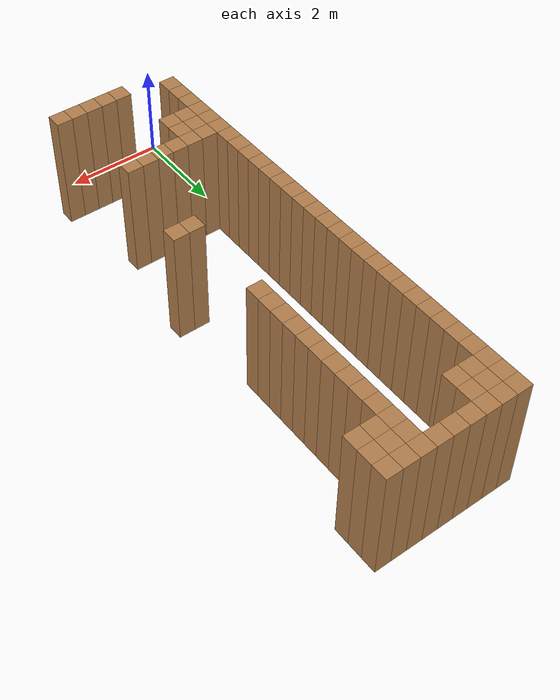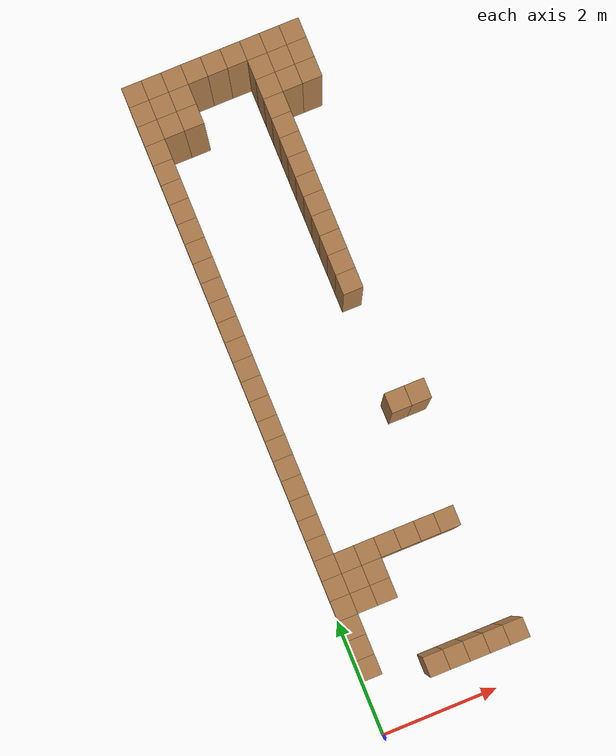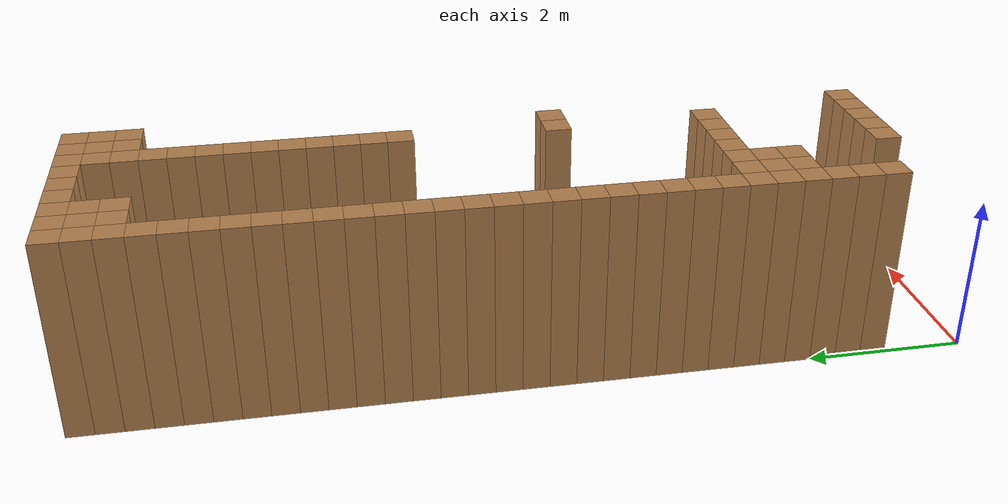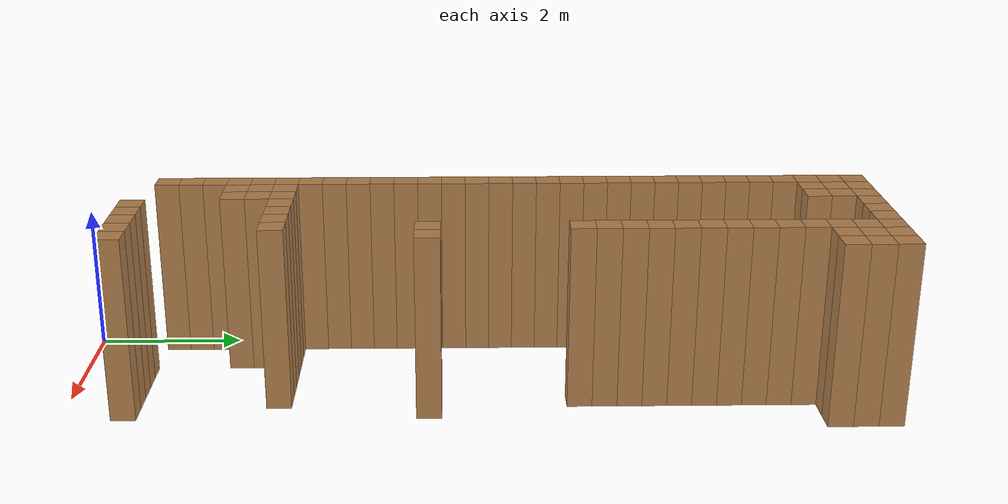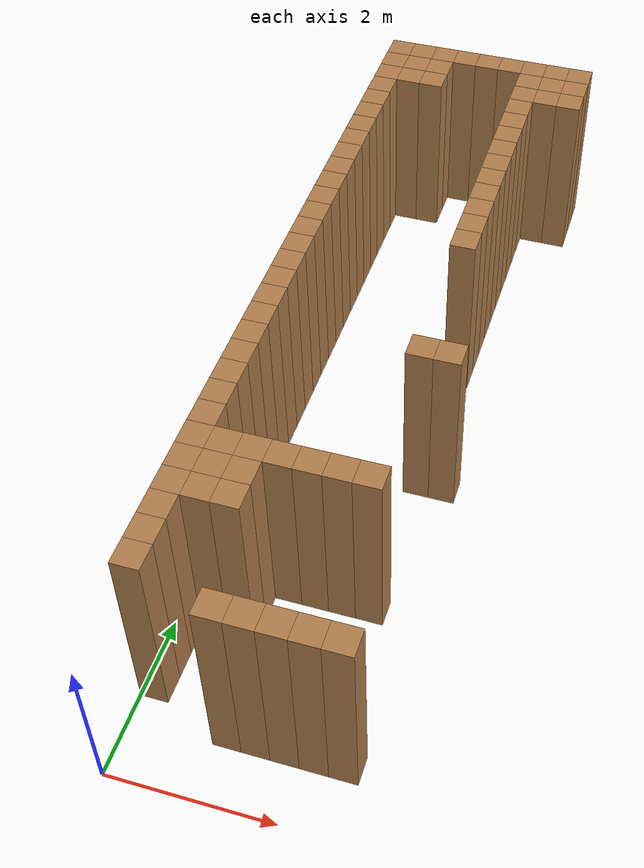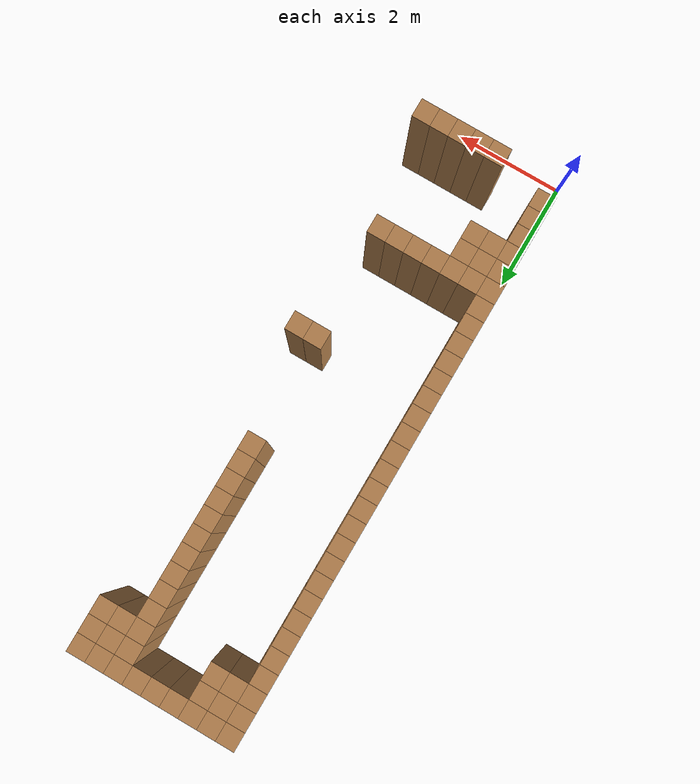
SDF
<sdf version="1.7">
 <model name="maze">
  <static>true</static>
  <link name="Wall_0">
   <collision name="Wall_0_Collision">
    <geometry><box><size>0.3333333333333333 0.3333333333333333 2.5</size></box></geometry>
    <pose>0 0 1.25 0 0 0</pose>
   </collision>
   <visual name="Wall_0_Visual">
    <pose>0 0 1.25 0 0 0</pose>
    <geometry><box><size>0.3333333333333333 0.3333333333333333 2.5</size></box></geometry>
    <material>
     <script><uri>file://media/materials/scripts/gazebo.material</uri><name>Gazebo/Wood</name></script>
     <ambient>1 1 1 1</ambient>
    </material>
    <meta><layer>0</layer></meta>
   </visual>
   <pose>0.16666666666666666 10.833333333333332 0 0 0 0</pose>
  </link>
  <link name="Wall_1">
   <collision name="Wall_1_Collision">
    <geometry><box><size>0.3333333333333333 0.3333333333333333 2.5</size></box></geometry>
    <pose>0 0 1.25 0 0 0</pose>
   </collision>
   <visual name="Wall_1_Visual">
    <pose>0 0 1.25 0 0 0</pose>
    <geometry><box><size>0.3333333333333333 0.3333333333333333 2.5</size></box></geometry>
    <material>
     <script><uri>file://media/materials/scripts/gazebo.material</uri><name>Gazebo/Wood</name></script>
     <ambient>1 1 1 1</ambient>
    </material>
    <meta><layer>0</layer></meta>
   </visual>
   <pose>0.5 10.833333333333332 0 0 0 0</pose>
  </link>
  <link name="Wall_2">
   <collision name="Wall_2_Collision">
    <geometry><box><size>0.3333333333333333 0.3333333333333333 2.5</size></box></geometry>
    <pose>0 0 1.25 0 0 0</pose>
   </collision>
   <visual name="Wall_2_Visual">
    <pose>0 0 1.25 0 0 0</pose>
    <geometry><box><size>0.3333333333333333 0.3333333333333333 2.5</size></box></geometry>
    <material>
     <script><uri>file://media/materials/scripts/gazebo.material</uri><name>Gazebo/Wood</name></script>
     <ambient>1 1 1 1</ambient>
    </material>
    <meta><layer>0</layer></meta>
   </visual>
   <pose>0.8333333333333333 10.833333333333332 0 0 0 0</pose>
  </link>
  <link name="Wall_3">
   <collision name="Wall_3_Collision">
    <geometry><box><size>0.3333333333333333 0.3333333333333333 2.5</size></box></geometry>
    <pose>0 0 1.25 0 0 0</pose>
   </collision>
   <visual name="Wall_3_Visual">
    <pose>0 0 1.25 0 0 0</pose>
    <geometry><box><size>0.3333333333333333 0.3333333333333333 2.5</size></box></geometry>
    <material>
     <script><uri>file://media/materials/scripts/gazebo.material</uri><name>Gazebo/Wood</name></script>
     <ambient>1 1 1 1</ambient>
    </material>
    <meta><layer>0</layer></meta>
   </visual>
   <pose>1.1666666666666667 10.833333333333332 0 0 0 0</pose>
  </link>
  <link name="Wall_4">
   <collision name="Wall_4_Collision">
    <geometry><box><size>0.3333333333333333 0.3333333333333333 2.5</size></box></geometry>
    <pose>0 0 1.25 0 0 0</pose>
   </collision>
   <visual name="Wall_4_Visual">
    <pose>0 0 1.25 0 0 0</pose>
    <geometry><box><size>0.3333333333333333 0.3333333333333333 2.5</size></box></geometry>
    <material>
     <script><uri>file://media/materials/scripts/gazebo.material</uri><name>Gazebo/Wood</name></script>
     <ambient>1 1 1 1</ambient>
    </material>
    <meta><layer>0</layer></meta>
   </visual>
   <pose>1.5 10.833333333333332 0 0 0 0</pose>
  </link>
  <link name="Wall_5">
   <collision name="Wall_5_Collision">
    <geometry><box><size>0.3333333333333333 0.3333333333333333 2.5</size></box></geometry>
    <pose>0 0 1.25 0 0 0</pose>
   </collision>
   <visual name="Wall_5_Visual">
    <pose>0 0 1.25 0 0 0</pose>
    <geometry><box><size>0.3333333333333333 0.3333333333333333 2.5</size></box></geometry>
    <material>
     <script><uri>file://media/materials/scripts/gazebo.material</uri><name>Gazebo/Wood</name></script>
     <ambient>1 1 1 1</ambient>
    </material>
    <meta><layer>0</layer></meta>
   </visual>
   <pose>1.8333333333333333 10.833333333333332 0 0 0 0</pose>
  </link>
  <link name="Wall_6">
   <collision name="Wall_6_Collision">
    <geometry><box><size>0.3333333333333333 0.3333333333333333 2.5</size></box></geometry>
    <pose>0 0 1.25 0 0 0</pose>
   </collision>
   <visual name="Wall_6_Visual">
    <pose>0 0 1.25 0 0 0</pose>
    <geometry><box><size>0.3333333333333333 0.3333333333333333 2.5</size></box></geometry>
    <material>
     <script><uri>file://media/materials/scripts/gazebo.material</uri><name>Gazebo/Wood</name></script>
     <ambient>1 1 1 1</ambient>
    </material>
    <meta><layer>0</layer></meta>
   </visual>
   <pose>2.1666666666666665 10.833333333333332 0 0 0 0</pose>
  </link>
  <link name="Wall_7">
   <collision name="Wall_7_Collision">
    <geometry><box><size>0.3333333333333333 0.3333333333333333 2.5</size></box></geometry>
    <pose>0 0 1.25 0 0 0</pose>
   </collision>
   <visual name="Wall_7_Visual">
    <pose>0 0 1.25 0 0 0</pose>
    <geometry><box><size>0.3333333333333333 0.3333333333333333 2.5</size></box></geometry>
    <material>
     <script><uri>file://media/materials/scripts/gazebo.material</uri><name>Gazebo/Wood</name></script>
     <ambient>1 1 1 1</ambient>
    </material>
    <meta><layer>0</layer></meta>
   </visual>
   <pose>2.4999999999999996 10.833333333333332 0 0 0 0</pose>
  </link>
  <link name="Wall_8">
   <collision name="Wall_8_Collision">
    <geometry><box><size>0.3333333333333333 0.3333333333333333 2.5</size></box></geometry>
    <pose>0 0 1.25 0 0 0</pose>
   </collision>
   <visual name="Wall_8_Visual">
    <pose>0 0 1.25 0 0 0</pose>
    <geometry><box><size>0.3333333333333333 0.3333333333333333 2.5</size></box></geometry>
    <material>
     <script><uri>file://media/materials/scripts/gazebo.material</uri><name>Gazebo/Wood</name></script>
     <ambient>1 1 1 1</ambient>
    </material>
    <meta><layer>0</layer></meta>
   </visual>
   <pose>2.833333333333333 10.833333333333332 0 0 0 0</pose>
  </link>
  <link name="Wall_26">
   <collision name="Wall_26_Collision">
    <geometry><box><size>0.3333333333333333 0.3333333333333333 2.5</size></box></geometry>
    <pose>0 0 1.25 0 0 0</pose>
   </collision>
   <visual name="Wall_26_Visual">
    <pose>0 0 1.25 0 0 0</pose>
    <geometry><box><size>0.3333333333333333 0.3333333333333333 2.5</size></box></geometry>
    <material>
     <script><uri>file://media/materials/scripts/gazebo.material</uri><name>Gazebo/Wood</name></script>
     <ambient>1 1 1 1</ambient>
    </material>
    <meta><layer>0</layer></meta>
   </visual>
   <pose>0.16666666666666666 10.499999999999998 0 0 0 0</pose>
  </link>
  <link name="Wall_27">
   <collision name="Wall_27_Collision">
    <geometry><box><size>0.3333333333333333 0.3333333333333333 2.5</size></box></geometry>
    <pose>0 0 1.25 0 0 0</pose>
   </collision>
   <visual name="Wall_27_Visual">
    <pose>0 0 1.25 0 0 0</pose>
    <geometry><box><size>0.3333333333333333 0.3333333333333333 2.5</size></box></geometry>
    <material>
     <script><uri>file://media/materials/scripts/gazebo.material</uri><name>Gazebo/Wood</name></script>
     <ambient>1 1 1 1</ambient>
    </material>
    <meta><layer>0</layer></meta>
   </visual>
   <pose>0.5 10.499999999999998 0 0 0 0</pose>
  </link>
  <link name="Wall_28">
   <collision name="Wall_28_Collision">
    <geometry><box><size>0.3333333333333333 0.3333333333333333 2.5</size></box></geometry>
    <pose>0 0 1.25 0 0 0</pose>
   </collision>
   <visual name="Wall_28_Visual">
    <pose>0 0 1.25 0 0 0</pose>
    <geometry><box><size>0.3333333333333333 0.3333333333333333 2.5</size></box></geometry>
    <material>
     <script><uri>file://media/materials/scripts/gazebo.material</uri><name>Gazebo/Wood</name></script>
     <ambient>1 1 1 1</ambient>
    </material>
    <meta><layer>0</layer></meta>
   </visual>
   <pose>0.8333333333333333 10.499999999999998 0 0 0 0</pose>
  </link>
  <link name="Wall_29">
   <collision name="Wall_29_Collision">
    <geometry><box><size>0.3333333333333333 0.3333333333333333 2.5</size></box></geometry>
    <pose>0 0 1.25 0 0 0</pose>
   </collision>
   <visual name="Wall_29_Visual">
    <pose>0 0 1.25 0 0 0</pose>
    <geometry><box><size>0.3333333333333333 0.3333333333333333 2.5</size></box></geometry>
    <material>
     <script><uri>file://media/materials/scripts/gazebo.material</uri><name>Gazebo/Wood</name></script>
     <ambient>1 1 1 1</ambient>
    </material>
    <meta><layer>0</layer></meta>
   </visual>
   <pose>2.1666666666666665 10.499999999999998 0 0 0 0</pose>
  </link>
  <link name="Wall_30">
   <collision name="Wall_30_Collision">
    <geometry><box><size>0.3333333333333333 0.3333333333333333 2.5</size></box></geometry>
    <pose>0 0 1.25 0 0 0</pose>
   </collision>
   <visual name="Wall_30_Visual">
    <pose>0 0 1.25 0 0 0</pose>
    <geometry><box><size>0.3333333333333333 0.3333333333333333 2.5</size></box></geometry>
    <material>
     <script><uri>file://media/materials/scripts/gazebo.material</uri><name>Gazebo/Wood</name></script>
     <ambient>1 1 1 1</ambient>
    </material>
    <meta><layer>0</layer></meta>
   </visual>
   <pose>2.4999999999999996 10.499999999999998 0 0 0 0</pose>
  </link>
  <link name="Wall_31">
   <collision name="Wall_31_Collision">
    <geometry><box><size>0.3333333333333333 0.3333333333333333 2.5</size></box></geometry>
    <pose>0 0 1.25 0 0 0</pose>
   </collision>
   <visual name="Wall_31_Visual">
    <pose>0 0 1.25 0 0 0</pose>
    <geometry><box><size>0.3333333333333333 0.3333333333333333 2.5</size></box></geometry>
    <material>
     <script><uri>file://media/materials/scripts/gazebo.material</uri><name>Gazebo/Wood</name></script>
     <ambient>1 1 1 1</ambient>
    </material>
    <meta><layer>0</layer></meta>
   </visual>
   <pose>2.833333333333333 10.499999999999998 0 0 0 0</pose>
  </link>
  <link name="Wall_33">
   <collision name="Wall_33_Collision">
    <geometry><box><size>0.3333333333333333 0.3333333333333333 2.5</size></box></geometry>
    <pose>0 0 1.25 0 0 0</pose>
   </collision>
   <visual name="Wall_33_Visual">
    <pose>0 0 1.25 0 0 0</pose>
    <geometry><box><size>0.3333333333333333 0.3333333333333333 2.5</size></box></geometry>
    <material>
     <script><uri>file://media/materials/scripts/gazebo.material</uri><name>Gazebo/Wood</name></script>
     <ambient>1 1 1 1</ambient>
    </material>
    <meta><layer>0</layer></meta>
   </visual>
   <pose>0.16666666666666666 10.166666666666666 0 0 0 0</pose>
  </link>
  <link name="Wall_34">
   <collision name="Wall_34_Collision">
    <geometry><box><size>0.3333333333333333 0.3333333333333333 2.5</size></box></geometry>
    <pose>0 0 1.25 0 0 0</pose>
   </collision>
   <visual name="Wall_34_Visual">
    <pose>0 0 1.25 0 0 0</pose>
    <geometry><box><size>0.3333333333333333 0.3333333333333333 2.5</size></box></geometry>
    <material>
     <script><uri>file://media/materials/scripts/gazebo.material</uri><name>Gazebo/Wood</name></script>
     <ambient>1 1 1 1</ambient>
    </material>
    <meta><layer>0</layer></meta>
   </visual>
   <pose>0.5 10.166666666666666 0 0 0 0</pose>
  </link>
  <link name="Wall_35">
   <collision name="Wall_35_Collision">
    <geometry><box><size>0.3333333333333333 0.3333333333333333 2.5</size></box></geometry>
    <pose>0 0 1.25 0 0 0</pose>
   </collision>
   <visual name="Wall_35_Visual">
    <pose>0 0 1.25 0 0 0</pose>
    <geometry><box><size>0.3333333333333333 0.3333333333333333 2.5</size></box></geometry>
    <material>
     <script><uri>file://media/materials/scripts/gazebo.material</uri><name>Gazebo/Wood</name></script>
     <ambient>1 1 1 1</ambient>
    </material>
    <meta><layer>0</layer></meta>
   </visual>
   <pose>0.8333333333333333 10.166666666666666 0 0 0 0</pose>
  </link>
  <link name="Wall_36">
   <collision name="Wall_36_Collision">
    <geometry><box><size>0.3333333333333333 0.3333333333333333 2.5</size></box></geometry>
    <pose>0 0 1.25 0 0 0</pose>
   </collision>
   <visual name="Wall_36_Visual">
    <pose>0 0 1.25 0 0 0</pose>
    <geometry><box><size>0.3333333333333333 0.3333333333333333 2.5</size></box></geometry>
    <material>
     <script><uri>file://media/materials/scripts/gazebo.material</uri><name>Gazebo/Wood</name></script>
     <ambient>1 1 1 1</ambient>
    </material>
    <meta><layer>0</layer></meta>
   </visual>
   <pose>2.1666666666666665 10.166666666666666 0 0 0 0</pose>
  </link>
  <link name="Wall_37">
   <collision name="Wall_37_Collision">
    <geometry><box><size>0.3333333333333333 0.3333333333333333 2.5</size></box></geometry>
    <pose>0 0 1.25 0 0 0</pose>
   </collision>
   <visual name="Wall_37_Visual">
    <pose>0 0 1.25 0 0 0</pose>
    <geometry><box><size>0.3333333333333333 0.3333333333333333 2.5</size></box></geometry>
    <material>
     <script><uri>file://media/materials/scripts/gazebo.material</uri><name>Gazebo/Wood</name></script>
     <ambient>1 1 1 1</ambient>
    </material>
    <meta><layer>0</layer></meta>
   </visual>
   <pose>2.4999999999999996 10.166666666666666 0 0 0 0</pose>
  </link>
  <link name="Wall_38">
   <collision name="Wall_38_Collision">
    <geometry><box><size>0.3333333333333333 0.3333333333333333 2.5</size></box></geometry>
    <pose>0 0 1.25 0 0 0</pose>
   </collision>
   <visual name="Wall_38_Visual">
    <pose>0 0 1.25 0 0 0</pose>
    <geometry><box><size>0.3333333333333333 0.3333333333333333 2.5</size></box></geometry>
    <material>
     <script><uri>file://media/materials/scripts/gazebo.material</uri><name>Gazebo/Wood</name></script>
     <ambient>1 1 1 1</ambient>
    </material>
    <meta><layer>0</layer></meta>
   </visual>
   <pose>2.833333333333333 10.166666666666666 0 0 0 0</pose>
  </link>
  <link name="Wall_40">
   <collision name="Wall_40_Collision">
    <geometry><box><size>0.3333333333333333 0.3333333333333333 2.5</size></box></geometry>
    <pose>0 0 1.25 0 0 0</pose>
   </collision>
   <visual name="Wall_40_Visual">
    <pose>0 0 1.25 0 0 0</pose>
    <geometry><box><size>0.3333333333333333 0.3333333333333333 2.5</size></box></geometry>
    <material>
     <script><uri>file://media/materials/scripts/gazebo.material</uri><name>Gazebo/Wood</name></script>
     <ambient>1 1 1 1</ambient>
    </material>
    <meta><layer>0</layer></meta>
   </visual>
   <pose>0.16666666666666666 9.833333333333332 0 0 0 0</pose>
  </link>
  <link name="Wall_41">
   <collision name="Wall_41_Collision">
    <geometry><box><size>0.3333333333333333 0.3333333333333333 2.5</size></box></geometry>
    <pose>0 0 1.25 0 0 0</pose>
   </collision>
   <visual name="Wall_41_Visual">
    <pose>0 0 1.25 0 0 0</pose>
    <geometry><box><size>0.3333333333333333 0.3333333333333333 2.5</size></box></geometry>
    <material>
     <script><uri>file://media/materials/scripts/gazebo.material</uri><name>Gazebo/Wood</name></script>
     <ambient>1 1 1 1</ambient>
    </material>
    <meta><layer>0</layer></meta>
   </visual>
   <pose>2.1666666666666665 9.833333333333332 0 0 0 0</pose>
  </link>
  <link name="Wall_43">
   <collision name="Wall_43_Collision">
    <geometry><box><size>0.3333333333333333 0.3333333333333333 2.5</size></box></geometry>
    <pose>0 0 1.25 0 0 0</pose>
   </collision>
   <visual name="Wall_43_Visual">
    <pose>0 0 1.25 0 0 0</pose>
    <geometry><box><size>0.3333333333333333 0.3333333333333333 2.5</size></box></geometry>
    <material>
     <script><uri>file://media/materials/scripts/gazebo.material</uri><name>Gazebo/Wood</name></script>
     <ambient>1 1 1 1</ambient>
    </material>
    <meta><layer>0</layer></meta>
   </visual>
   <pose>0.16666666666666666 9.499999999999998 0 0 0 0</pose>
  </link>
  <link name="Wall_44">
   <collision name="Wall_44_Collision">
    <geometry><box><size>0.3333333333333333 0.3333333333333333 2.5</size></box></geometry>
    <pose>0 0 1.25 0 0 0</pose>
   </collision>
   <visual name="Wall_44_Visual">
    <pose>0 0 1.25 0 0 0</pose>
    <geometry><box><size>0.3333333333333333 0.3333333333333333 2.5</size></box></geometry>
    <material>
     <script><uri>file://media/materials/scripts/gazebo.material</uri><name>Gazebo/Wood</name></script>
     <ambient>1 1 1 1</ambient>
    </material>
    <meta><layer>0</layer></meta>
   </visual>
   <pose>2.1666666666666665 9.499999999999998 0 0 0 0</pose>
  </link>
  <link name="Wall_46">
   <collision name="Wall_46_Collision">
    <geometry><box><size>0.3333333333333333 0.3333333333333333 2.5</size></box></geometry>
    <pose>0 0 1.25 0 0 0</pose>
   </collision>
   <visual name="Wall_46_Visual">
    <pose>0 0 1.25 0 0 0</pose>
    <geometry><box><size>0.3333333333333333 0.3333333333333333 2.5</size></box></geometry>
    <material>
     <script><uri>file://media/materials/scripts/gazebo.material</uri><name>Gazebo/Wood</name></script>
     <ambient>1 1 1 1</ambient>
    </material>
    <meta><layer>0</layer></meta>
   </visual>
   <pose>0.16666666666666666 9.166666666666666 0 0 0 0</pose>
  </link>
  <link name="Wall_47">
   <collision name="Wall_47_Collision">
    <geometry><box><size>0.3333333333333333 0.3333333333333333 2.5</size></box></geometry>
    <pose>0 0 1.25 0 0 0</pose>
   </collision>
   <visual name="Wall_47_Visual">
    <pose>0 0 1.25 0 0 0</pose>
    <geometry><box><size>0.3333333333333333 0.3333333333333333 2.5</size></box></geometry>
    <material>
     <script><uri>file://media/materials/scripts/gazebo.material</uri><name>Gazebo/Wood</name></script>
     <ambient>1 1 1 1</ambient>
    </material>
    <meta><layer>0</layer></meta>
   </visual>
   <pose>2.1666666666666665 9.166666666666666 0 0 0 0</pose>
  </link>
  <link name="Wall_49">
   <collision name="Wall_49_Collision">
    <geometry><box><size>0.3333333333333333 0.3333333333333333 2.5</size></box></geometry>
    <pose>0 0 1.25 0 0 0</pose>
   </collision>
   <visual name="Wall_49_Visual">
    <pose>0 0 1.25 0 0 0</pose>
    <geometry><box><size>0.3333333333333333 0.3333333333333333 2.5</size></box></geometry>
    <material>
     <script><uri>file://media/materials/scripts/gazebo.material</uri><name>Gazebo/Wood</name></script>
     <ambient>1 1 1 1</ambient>
    </material>
    <meta><layer>0</layer></meta>
   </visual>
   <pose>0.16666666666666666 8.833333333333332 0 0 0 0</pose>
  </link>
  <link name="Wall_50">
   <collision name="Wall_50_Collision">
    <geometry><box><size>0.3333333333333333 0.3333333333333333 2.5</size></box></geometry>
    <pose>0 0 1.25 0 0 0</pose>
   </collision>
   <visual name="Wall_50_Visual">
    <pose>0 0 1.25 0 0 0</pose>
    <geometry><box><size>0.3333333333333333 0.3333333333333333 2.5</size></box></geometry>
    <material>
     <script><uri>file://media/materials/scripts/gazebo.material</uri><name>Gazebo/Wood</name></script>
     <ambient>1 1 1 1</ambient>
    </material>
    <meta><layer>0</layer></meta>
   </visual>
   <pose>2.1666666666666665 8.833333333333332 0 0 0 0</pose>
  </link>
  <link name="Wall_70">
   <collision name="Wall_70_Collision">
    <geometry><box><size>0.3333333333333333 0.3333333333333333 2.5</size></box></geometry>
    <pose>0 0 1.25 0 0 0</pose>
   </collision>
   <visual name="Wall_70_Visual">
    <pose>0 0 1.25 0 0 0</pose>
    <geometry><box><size>0.3333333333333333 0.3333333333333333 2.5</size></box></geometry>
    <material>
     <script><uri>file://media/materials/scripts/gazebo.material</uri><name>Gazebo/Wood</name></script>
     <ambient>1 1 1 1</ambient>
    </material>
    <meta><layer>0</layer></meta>
   </visual>
   <pose>0.16666666666666666 8.499999999999998 0 0 0 0</pose>
  </link>
  <link name="Wall_71">
   <collision name="Wall_71_Collision">
    <geometry><box><size>0.3333333333333333 0.3333333333333333 2.5</size></box></geometry>
    <pose>0 0 1.25 0 0 0</pose>
   </collision>
   <visual name="Wall_71_Visual">
    <pose>0 0 1.25 0 0 0</pose>
    <geometry><box><size>0.3333333333333333 0.3333333333333333 2.5</size></box></geometry>
    <material>
     <script><uri>file://media/materials/scripts/gazebo.material</uri><name>Gazebo/Wood</name></script>
     <ambient>1 1 1 1</ambient>
    </material>
    <meta><layer>0</layer></meta>
   </visual>
   <pose>2.1666666666666665 8.499999999999998 0 0 0 0</pose>
  </link>
  <link name="Wall_76">
   <collision name="Wall_76_Collision">
    <geometry><box><size>0.3333333333333333 0.3333333333333333 2.5</size></box></geometry>
    <pose>0 0 1.25 0 0 0</pose>
   </collision>
   <visual name="Wall_76_Visual">
    <pose>0 0 1.25 0 0 0</pose>
    <geometry><box><size>0.3333333333333333 0.3333333333333333 2.5</size></box></geometry>
    <material>
     <script><uri>file://media/materials/scripts/gazebo.material</uri><name>Gazebo/Wood</name></script>
     <ambient>1 1 1 1</ambient>
    </material>
    <meta><layer>0</layer></meta>
   </visual>
   <pose>0.16666666666666666 8.166666666666666 0 0 0 0</pose>
  </link>
  <link name="Wall_77">
   <collision name="Wall_77_Collision">
    <geometry><box><size>0.3333333333333333 0.3333333333333333 2.5</size></box></geometry>
    <pose>0 0 1.25 0 0 0</pose>
   </collision>
   <visual name="Wall_77_Visual">
    <pose>0 0 1.25 0 0 0</pose>
    <geometry><box><size>0.3333333333333333 0.3333333333333333 2.5</size></box></geometry>
    <material>
     <script><uri>file://media/materials/scripts/gazebo.material</uri><name>Gazebo/Wood</name></script>
     <ambient>1 1 1 1</ambient>
    </material>
    <meta><layer>0</layer></meta>
   </visual>
   <pose>2.1666666666666665 8.166666666666666 0 0 0 0</pose>
  </link>
  <link name="Wall_82">
   <collision name="Wall_82_Collision">
    <geometry><box><size>0.3333333333333333 0.3333333333333333 2.5</size></box></geometry>
    <pose>0 0 1.25 0 0 0</pose>
   </collision>
   <visual name="Wall_82_Visual">
    <pose>0 0 1.25 0 0 0</pose>
    <geometry><box><size>0.3333333333333333 0.3333333333333333 2.5</size></box></geometry>
    <material>
     <script><uri>file://media/materials/scripts/gazebo.material</uri><name>Gazebo/Wood</name></script>
     <ambient>1 1 1 1</ambient>
    </material>
    <meta><layer>0</layer></meta>
   </visual>
   <pose>0.16666666666666666 7.833333333333333 0 0 0 0</pose>
  </link>
  <link name="Wall_83">
   <collision name="Wall_83_Collision">
    <geometry><box><size>0.3333333333333333 0.3333333333333333 2.5</size></box></geometry>
    <pose>0 0 1.25 0 0 0</pose>
   </collision>
   <visual name="Wall_83_Visual">
    <pose>0 0 1.25 0 0 0</pose>
    <geometry><box><size>0.3333333333333333 0.3333333333333333 2.5</size></box></geometry>
    <material>
     <script><uri>file://media/materials/scripts/gazebo.material</uri><name>Gazebo/Wood</name></script>
     <ambient>1 1 1 1</ambient>
    </material>
    <meta><layer>0</layer></meta>
   </visual>
   <pose>2.1666666666666665 7.833333333333333 0 0 0 0</pose>
  </link>
  <link name="Wall_86">
   <collision name="Wall_86_Collision">
    <geometry><box><size>0.3333333333333333 0.3333333333333333 2.5</size></box></geometry>
    <pose>0 0 1.25 0 0 0</pose>
   </collision>
   <visual name="Wall_86_Visual">
    <pose>0 0 1.25 0 0 0</pose>
    <geometry><box><size>0.3333333333333333 0.3333333333333333 2.5</size></box></geometry>
    <material>
     <script><uri>file://media/materials/scripts/gazebo.material</uri><name>Gazebo/Wood</name></script>
     <ambient>1 1 1 1</ambient>
    </material>
    <meta><layer>0</layer></meta>
   </visual>
   <pose>0.16666666666666666 7.5 0 0 0 0</pose>
  </link>
  <link name="Wall_87">
   <collision name="Wall_87_Collision">
    <geometry><box><size>0.3333333333333333 0.3333333333333333 2.5</size></box></geometry>
    <pose>0 0 1.25 0 0 0</pose>
   </collision>
   <visual name="Wall_87_Visual">
    <pose>0 0 1.25 0 0 0</pose>
    <geometry><box><size>0.3333333333333333 0.3333333333333333 2.5</size></box></geometry>
    <material>
     <script><uri>file://media/materials/scripts/gazebo.material</uri><name>Gazebo/Wood</name></script>
     <ambient>1 1 1 1</ambient>
    </material>
    <meta><layer>0</layer></meta>
   </visual>
   <pose>2.1666666666666665 7.5 0 0 0 0</pose>
  </link>
  <link name="Wall_90">
   <collision name="Wall_90_Collision">
    <geometry><box><size>0.3333333333333333 0.3333333333333333 2.5</size></box></geometry>
    <pose>0 0 1.25 0 0 0</pose>
   </collision>
   <visual name="Wall_90_Visual">
    <pose>0 0 1.25 0 0 0</pose>
    <geometry><box><size>0.3333333333333333 0.3333333333333333 2.5</size></box></geometry>
    <material>
     <script><uri>file://media/materials/scripts/gazebo.material</uri><name>Gazebo/Wood</name></script>
     <ambient>1 1 1 1</ambient>
    </material>
    <meta><layer>0</layer></meta>
   </visual>
   <pose>0.16666666666666666 7.166666666666667 0 0 0 0</pose>
  </link>
  <link name="Wall_91">
   <collision name="Wall_91_Collision">
    <geometry><box><size>0.3333333333333333 0.3333333333333333 2.5</size></box></geometry>
    <pose>0 0 1.25 0 0 0</pose>
   </collision>
   <visual name="Wall_91_Visual">
    <pose>0 0 1.25 0 0 0</pose>
    <geometry><box><size>0.3333333333333333 0.3333333333333333 2.5</size></box></geometry>
    <material>
     <script><uri>file://media/materials/scripts/gazebo.material</uri><name>Gazebo/Wood</name></script>
     <ambient>1 1 1 1</ambient>
    </material>
    <meta><layer>0</layer></meta>
   </visual>
   <pose>2.1666666666666665 7.166666666666667 0 0 0 0</pose>
  </link>
  <link name="Wall_94">
   <collision name="Wall_94_Collision">
    <geometry><box><size>0.3333333333333333 0.3333333333333333 2.5</size></box></geometry>
    <pose>0 0 1.25 0 0 0</pose>
   </collision>
   <visual name="Wall_94_Visual">
    <pose>0 0 1.25 0 0 0</pose>
    <geometry><box><size>0.3333333333333333 0.3333333333333333 2.5</size></box></geometry>
    <material>
     <script><uri>file://media/materials/scripts/gazebo.material</uri><name>Gazebo/Wood</name></script>
     <ambient>1 1 1 1</ambient>
    </material>
    <meta><layer>0</layer></meta>
   </visual>
   <pose>0.16666666666666666 6.833333333333333 0 0 0 0</pose>
  </link>
  <link name="Wall_95">
   <collision name="Wall_95_Collision">
    <geometry><box><size>0.3333333333333333 0.3333333333333333 2.5</size></box></geometry>
    <pose>0 0 1.25 0 0 0</pose>
   </collision>
   <visual name="Wall_95_Visual">
    <pose>0 0 1.25 0 0 0</pose>
    <geometry><box><size>0.3333333333333333 0.3333333333333333 2.5</size></box></geometry>
    <material>
     <script><uri>file://media/materials/scripts/gazebo.material</uri><name>Gazebo/Wood</name></script>
     <ambient>1 1 1 1</ambient>
    </material>
    <meta><layer>0</layer></meta>
   </visual>
   <pose>2.1666666666666665 6.833333333333333 0 0 0 0</pose>
  </link>
  <link name="Wall_110">
   <collision name="Wall_110_Collision">
    <geometry><box><size>0.3333333333333333 0.3333333333333333 2.5</size></box></geometry>
    <pose>0 0 1.25 0 0 0</pose>
   </collision>
   <visual name="Wall_110_Visual">
    <pose>0 0 1.25 0 0 0</pose>
    <geometry><box><size>0.3333333333333333 0.3333333333333333 2.5</size></box></geometry>
    <material>
     <script><uri>file://media/materials/scripts/gazebo.material</uri><name>Gazebo/Wood</name></script>
     <ambient>1 1 1 1</ambient>
    </material>
    <meta><layer>0</layer></meta>
   </visual>
   <pose>0.16666666666666666 6.5 0 0 0 0</pose>
  </link>
  <link name="Wall_113">
   <collision name="Wall_113_Collision">
    <geometry><box><size>0.3333333333333333 0.3333333333333333 2.5</size></box></geometry>
    <pose>0 0 1.25 0 0 0</pose>
   </collision>
   <visual name="Wall_113_Visual">
    <pose>0 0 1.25 0 0 0</pose>
    <geometry><box><size>0.3333333333333333 0.3333333333333333 2.5</size></box></geometry>
    <material>
     <script><uri>file://media/materials/scripts/gazebo.material</uri><name>Gazebo/Wood</name></script>
     <ambient>1 1 1 1</ambient>
    </material>
    <meta><layer>0</layer></meta>
   </visual>
   <pose>0.16666666666666666 6.166666666666667 0 0 0 0</pose>
  </link>
  <link name="Wall_116">
   <collision name="Wall_116_Collision">
    <geometry><box><size>0.3333333333333333 0.3333333333333333 2.5</size></box></geometry>
    <pose>0 0 1.25 0 0 0</pose>
   </collision>
   <visual name="Wall_116_Visual">
    <pose>0 0 1.25 0 0 0</pose>
    <geometry><box><size>0.3333333333333333 0.3333333333333333 2.5</size></box></geometry>
    <material>
     <script><uri>file://media/materials/scripts/gazebo.material</uri><name>Gazebo/Wood</name></script>
     <ambient>1 1 1 1</ambient>
    </material>
    <meta><layer>0</layer></meta>
   </visual>
   <pose>0.16666666666666666 5.833333333333333 0 0 0 0</pose>
  </link>
  <link name="Wall_119">
   <collision name="Wall_119_Collision">
    <geometry><box><size>0.3333333333333333 0.3333333333333333 2.5</size></box></geometry>
    <pose>0 0 1.25 0 0 0</pose>
   </collision>
   <visual name="Wall_119_Visual">
    <pose>0 0 1.25 0 0 0</pose>
    <geometry><box><size>0.3333333333333333 0.3333333333333333 2.5</size></box></geometry>
    <material>
     <script><uri>file://media/materials/scripts/gazebo.material</uri><name>Gazebo/Wood</name></script>
     <ambient>1 1 1 1</ambient>
    </material>
    <meta><layer>0</layer></meta>
   </visual>
   <pose>0.16666666666666666 5.5 0 0 0 0</pose>
  </link>
  <link name="Wall_122">
   <collision name="Wall_122_Collision">
    <geometry><box><size>0.3333333333333333 0.3333333333333333 2.5</size></box></geometry>
    <pose>0 0 1.25 0 0 0</pose>
   </collision>
   <visual name="Wall_122_Visual">
    <pose>0 0 1.25 0 0 0</pose>
    <geometry><box><size>0.3333333333333333 0.3333333333333333 2.5</size></box></geometry>
    <material>
     <script><uri>file://media/materials/scripts/gazebo.material</uri><name>Gazebo/Wood</name></script>
     <ambient>1 1 1 1</ambient>
    </material>
    <meta><layer>0</layer></meta>
   </visual>
   <pose>0.16666666666666666 5.166666666666667 0 0 0 0</pose>
  </link>
  <link name="Wall_125">
   <collision name="Wall_125_Collision">
    <geometry><box><size>0.3333333333333333 0.3333333333333333 2.5</size></box></geometry>
    <pose>0 0 1.25 0 0 0</pose>
   </collision>
   <visual name="Wall_125_Visual">
    <pose>0 0 1.25 0 0 0</pose>
    <geometry><box><size>0.3333333333333333 0.3333333333333333 2.5</size></box></geometry>
    <material>
     <script><uri>file://media/materials/scripts/gazebo.material</uri><name>Gazebo/Wood</name></script>
     <ambient>1 1 1 1</ambient>
    </material>
    <meta><layer>0</layer></meta>
   </visual>
   <pose>0.16666666666666666 4.833333333333333 0 0 0 0</pose>
  </link>
  <link name="Wall_126">
   <collision name="Wall_126_Collision">
    <geometry><box><size>0.3333333333333333 0.3333333333333333 2.5</size></box></geometry>
    <pose>0 0 1.25 0 0 0</pose>
   </collision>
   <visual name="Wall_126_Visual">
    <pose>0 0 1.25 0 0 0</pose>
    <geometry><box><size>0.3333333333333333 0.3333333333333333 2.5</size></box></geometry>
    <material>
     <script><uri>file://media/materials/scripts/gazebo.material</uri><name>Gazebo/Wood</name></script>
     <ambient>1 1 1 1</ambient>
    </material>
    <meta><layer>0</layer></meta>
   </visual>
   <pose>2.1666666666666665 4.833333333333333 0 0 0 0</pose>
  </link>
  <link name="Wall_127">
   <collision name="Wall_127_Collision">
    <geometry><box><size>0.3333333333333333 0.3333333333333333 2.5</size></box></geometry>
    <pose>0 0 1.25 0 0 0</pose>
   </collision>
   <visual name="Wall_127_Visual">
    <pose>0 0 1.25 0 0 0</pose>
    <geometry><box><size>0.3333333333333333 0.3333333333333333 2.5</size></box></geometry>
    <material>
     <script><uri>file://media/materials/scripts/gazebo.material</uri><name>Gazebo/Wood</name></script>
     <ambient>1 1 1 1</ambient>
    </material>
    <meta><layer>0</layer></meta>
   </visual>
   <pose>2.4999999999999996 4.833333333333333 0 0 0 0</pose>
  </link>
  <link name="Wall_141">
   <collision name="Wall_141_Collision">
    <geometry><box><size>0.3333333333333333 0.3333333333333333 2.5</size></box></geometry>
    <pose>0 0 1.25 0 0 0</pose>
   </collision>
   <visual name="Wall_141_Visual">
    <pose>0 0 1.25 0 0 0</pose>
    <geometry><box><size>0.3333333333333333 0.3333333333333333 2.5</size></box></geometry>
    <material>
     <script><uri>file://media/materials/scripts/gazebo.material</uri><name>Gazebo/Wood</name></script>
     <ambient>1 1 1 1</ambient>
    </material>
    <meta><layer>0</layer></meta>
   </visual>
   <pose>0.16666666666666666 4.5 0 0 0 0</pose>
  </link>
  <link name="Wall_147">
   <collision name="Wall_147_Collision">
    <geometry><box><size>0.3333333333333333 0.3333333333333333 2.5</size></box></geometry>
    <pose>0 0 1.25 0 0 0</pose>
   </collision>
   <visual name="Wall_147_Visual">
    <pose>0 0 1.25 0 0 0</pose>
    <geometry><box><size>0.3333333333333333 0.3333333333333333 2.5</size></box></geometry>
    <material>
     <script><uri>file://media/materials/scripts/gazebo.material</uri><name>Gazebo/Wood</name></script>
     <ambient>1 1 1 1</ambient>
    </material>
    <meta><layer>0</layer></meta>
   </visual>
   <pose>0.16666666666666666 4.166666666666667 0 0 0 0</pose>
  </link>
  <link name="Wall_153">
   <collision name="Wall_153_Collision">
    <geometry><box><size>0.3333333333333333 0.3333333333333333 2.5</size></box></geometry>
    <pose>0 0 1.25 0 0 0</pose>
   </collision>
   <visual name="Wall_153_Visual">
    <pose>0 0 1.25 0 0 0</pose>
    <geometry><box><size>0.3333333333333333 0.3333333333333333 2.5</size></box></geometry>
    <material>
     <script><uri>file://media/materials/scripts/gazebo.material</uri><name>Gazebo/Wood</name></script>
     <ambient>1 1 1 1</ambient>
    </material>
    <meta><layer>0</layer></meta>
   </visual>
   <pose>0.16666666666666666 3.833333333333333 0 0 0 0</pose>
  </link>
  <link name="Wall_157">
   <collision name="Wall_157_Collision">
    <geometry><box><size>0.3333333333333333 0.3333333333333333 2.5</size></box></geometry>
    <pose>0 0 1.25 0 0 0</pose>
   </collision>
   <visual name="Wall_157_Visual">
    <pose>0 0 1.25 0 0 0</pose>
    <geometry><box><size>0.3333333333333333 0.3333333333333333 2.5</size></box></geometry>
    <material>
     <script><uri>file://media/materials/scripts/gazebo.material</uri><name>Gazebo/Wood</name></script>
     <ambient>1 1 1 1</ambient>
    </material>
    <meta><layer>0</layer></meta>
   </visual>
   <pose>0.16666666666666666 3.4999999999999996 0 0 0 0</pose>
  </link>
  <link name="Wall_161">
   <collision name="Wall_161_Collision">
    <geometry><box><size>0.3333333333333333 0.3333333333333333 2.5</size></box></geometry>
    <pose>0 0 1.25 0 0 0</pose>
   </collision>
   <visual name="Wall_161_Visual">
    <pose>0 0 1.25 0 0 0</pose>
    <geometry><box><size>0.3333333333333333 0.3333333333333333 2.5</size></box></geometry>
    <material>
     <script><uri>file://media/materials/scripts/gazebo.material</uri><name>Gazebo/Wood</name></script>
     <ambient>1 1 1 1</ambient>
    </material>
    <meta><layer>0</layer></meta>
   </visual>
   <pose>0.16666666666666666 3.1666666666666665 0 0 0 0</pose>
  </link>
  <link name="Wall_165">
   <collision name="Wall_165_Collision">
    <geometry><box><size>0.3333333333333333 0.3333333333333333 2.5</size></box></geometry>
    <pose>0 0 1.25 0 0 0</pose>
   </collision>
   <visual name="Wall_165_Visual">
    <pose>0 0 1.25 0 0 0</pose>
    <geometry><box><size>0.3333333333333333 0.3333333333333333 2.5</size></box></geometry>
    <material>
     <script><uri>file://media/materials/scripts/gazebo.material</uri><name>Gazebo/Wood</name></script>
     <ambient>1 1 1 1</ambient>
    </material>
    <meta><layer>0</layer></meta>
   </visual>
   <pose>0.16666666666666666 2.833333333333333 0 0 0 0</pose>
  </link>
  <link name="Wall_166">
   <collision name="Wall_166_Collision">
    <geometry><box><size>0.3333333333333333 0.3333333333333333 2.5</size></box></geometry>
    <pose>0 0 1.25 0 0 0</pose>
   </collision>
   <visual name="Wall_166_Visual">
    <pose>0 0 1.25 0 0 0</pose>
    <geometry><box><size>0.3333333333333333 0.3333333333333333 2.5</size></box></geometry>
    <material>
     <script><uri>file://media/materials/scripts/gazebo.material</uri><name>Gazebo/Wood</name></script>
     <ambient>1 1 1 1</ambient>
    </material>
    <meta><layer>0</layer></meta>
   </visual>
   <pose>0.5 2.833333333333333 0 0 0 0</pose>
  </link>
  <link name="Wall_167">
   <collision name="Wall_167_Collision">
    <geometry><box><size>0.3333333333333333 0.3333333333333333 2.5</size></box></geometry>
    <pose>0 0 1.25 0 0 0</pose>
   </collision>
   <visual name="Wall_167_Visual">
    <pose>0 0 1.25 0 0 0</pose>
    <geometry><box><size>0.3333333333333333 0.3333333333333333 2.5</size></box></geometry>
    <material>
     <script><uri>file://media/materials/scripts/gazebo.material</uri><name>Gazebo/Wood</name></script>
     <ambient>1 1 1 1</ambient>
    </material>
    <meta><layer>0</layer></meta>
   </visual>
   <pose>0.8333333333333333 2.833333333333333 0 0 0 0</pose>
  </link>
  <link name="Wall_168">
   <collision name="Wall_168_Collision">
    <geometry><box><size>0.3333333333333333 0.3333333333333333 2.5</size></box></geometry>
    <pose>0 0 1.25 0 0 0</pose>
   </collision>
   <visual name="Wall_168_Visual">
    <pose>0 0 1.25 0 0 0</pose>
    <geometry><box><size>0.3333333333333333 0.3333333333333333 2.5</size></box></geometry>
    <material>
     <script><uri>file://media/materials/scripts/gazebo.material</uri><name>Gazebo/Wood</name></script>
     <ambient>1 1 1 1</ambient>
    </material>
    <meta><layer>0</layer></meta>
   </visual>
   <pose>1.1666666666666667 2.833333333333333 0 0 0 0</pose>
  </link>
  <link name="Wall_169">
   <collision name="Wall_169_Collision">
    <geometry><box><size>0.3333333333333333 0.3333333333333333 2.5</size></box></geometry>
    <pose>0 0 1.25 0 0 0</pose>
   </collision>
   <visual name="Wall_169_Visual">
    <pose>0 0 1.25 0 0 0</pose>
    <geometry><box><size>0.3333333333333333 0.3333333333333333 2.5</size></box></geometry>
    <material>
     <script><uri>file://media/materials/scripts/gazebo.material</uri><name>Gazebo/Wood</name></script>
     <ambient>1 1 1 1</ambient>
    </material>
    <meta><layer>0</layer></meta>
   </visual>
   <pose>1.5 2.833333333333333 0 0 0 0</pose>
  </link>
  <link name="Wall_170">
   <collision name="Wall_170_Collision">
    <geometry><box><size>0.3333333333333333 0.3333333333333333 2.5</size></box></geometry>
    <pose>0 0 1.25 0 0 0</pose>
   </collision>
   <visual name="Wall_170_Visual">
    <pose>0 0 1.25 0 0 0</pose>
    <geometry><box><size>0.3333333333333333 0.3333333333333333 2.5</size></box></geometry>
    <material>
     <script><uri>file://media/materials/scripts/gazebo.material</uri><name>Gazebo/Wood</name></script>
     <ambient>1 1 1 1</ambient>
    </material>
    <meta><layer>0</layer></meta>
   </visual>
   <pose>1.8333333333333333 2.833333333333333 0 0 0 0</pose>
  </link>
  <link name="Wall_171">
   <collision name="Wall_171_Collision">
    <geometry><box><size>0.3333333333333333 0.3333333333333333 2.5</size></box></geometry>
    <pose>0 0 1.25 0 0 0</pose>
   </collision>
   <visual name="Wall_171_Visual">
    <pose>0 0 1.25 0 0 0</pose>
    <geometry><box><size>0.3333333333333333 0.3333333333333333 2.5</size></box></geometry>
    <material>
     <script><uri>file://media/materials/scripts/gazebo.material</uri><name>Gazebo/Wood</name></script>
     <ambient>1 1 1 1</ambient>
    </material>
    <meta><layer>0</layer></meta>
   </visual>
   <pose>2.1666666666666665 2.833333333333333 0 0 0 0</pose>
  </link>
  <link name="Wall_181">
   <collision name="Wall_181_Collision">
    <geometry><box><size>0.3333333333333333 0.3333333333333333 2.5</size></box></geometry>
    <pose>0 0 1.25 0 0 0</pose>
   </collision>
   <visual name="Wall_181_Visual">
    <pose>0 0 1.25 0 0 0</pose>
    <geometry><box><size>0.3333333333333333 0.3333333333333333 2.5</size></box></geometry>
    <material>
     <script><uri>file://media/materials/scripts/gazebo.material</uri><name>Gazebo/Wood</name></script>
     <ambient>1 1 1 1</ambient>
    </material>
    <meta><layer>0</layer></meta>
   </visual>
   <pose>0.16666666666666666 2.4999999999999996 0 0 0 0</pose>
  </link>
  <link name="Wall_182">
   <collision name="Wall_182_Collision">
    <geometry><box><size>0.3333333333333333 0.3333333333333333 2.5</size></box></geometry>
    <pose>0 0 1.25 0 0 0</pose>
   </collision>
   <visual name="Wall_182_Visual">
    <pose>0 0 1.25 0 0 0</pose>
    <geometry><box><size>0.3333333333333333 0.3333333333333333 2.5</size></box></geometry>
    <material>
     <script><uri>file://media/materials/scripts/gazebo.material</uri><name>Gazebo/Wood</name></script>
     <ambient>1 1 1 1</ambient>
    </material>
    <meta><layer>0</layer></meta>
   </visual>
   <pose>0.5 2.4999999999999996 0 0 0 0</pose>
  </link>
  <link name="Wall_183">
   <collision name="Wall_183_Collision">
    <geometry><box><size>0.3333333333333333 0.3333333333333333 2.5</size></box></geometry>
    <pose>0 0 1.25 0 0 0</pose>
   </collision>
   <visual name="Wall_183_Visual">
    <pose>0 0 1.25 0 0 0</pose>
    <geometry><box><size>0.3333333333333333 0.3333333333333333 2.5</size></box></geometry>
    <material>
     <script><uri>file://media/materials/scripts/gazebo.material</uri><name>Gazebo/Wood</name></script>
     <ambient>1 1 1 1</ambient>
    </material>
    <meta><layer>0</layer></meta>
   </visual>
   <pose>0.8333333333333333 2.4999999999999996 0 0 0 0</pose>
  </link>
  <link name="Wall_186">
   <collision name="Wall_186_Collision">
    <geometry><box><size>0.3333333333333333 0.3333333333333333 2.5</size></box></geometry>
    <pose>0 0 1.25 0 0 0</pose>
   </collision>
   <visual name="Wall_186_Visual">
    <pose>0 0 1.25 0 0 0</pose>
    <geometry><box><size>0.3333333333333333 0.3333333333333333 2.5</size></box></geometry>
    <material>
     <script><uri>file://media/materials/scripts/gazebo.material</uri><name>Gazebo/Wood</name></script>
     <ambient>1 1 1 1</ambient>
    </material>
    <meta><layer>0</layer></meta>
   </visual>
   <pose>0.16666666666666666 2.1666666666666665 0 0 0 0</pose>
  </link>
  <link name="Wall_187">
   <collision name="Wall_187_Collision">
    <geometry><box><size>0.3333333333333333 0.3333333333333333 2.5</size></box></geometry>
    <pose>0 0 1.25 0 0 0</pose>
   </collision>
   <visual name="Wall_187_Visual">
    <pose>0 0 1.25 0 0 0</pose>
    <geometry><box><size>0.3333333333333333 0.3333333333333333 2.5</size></box></geometry>
    <material>
     <script><uri>file://media/materials/scripts/gazebo.material</uri><name>Gazebo/Wood</name></script>
     <ambient>1 1 1 1</ambient>
    </material>
    <meta><layer>0</layer></meta>
   </visual>
   <pose>0.5 2.1666666666666665 0 0 0 0</pose>
  </link>
  <link name="Wall_188">
   <collision name="Wall_188_Collision">
    <geometry><box><size>0.3333333333333333 0.3333333333333333 2.5</size></box></geometry>
    <pose>0 0 1.25 0 0 0</pose>
   </collision>
   <visual name="Wall_188_Visual">
    <pose>0 0 1.25 0 0 0</pose>
    <geometry><box><size>0.3333333333333333 0.3333333333333333 2.5</size></box></geometry>
    <material>
     <script><uri>file://media/materials/scripts/gazebo.material</uri><name>Gazebo/Wood</name></script>
     <ambient>1 1 1 1</ambient>
    </material>
    <meta><layer>0</layer></meta>
   </visual>
   <pose>0.8333333333333333 2.1666666666666665 0 0 0 0</pose>
  </link>
  <link name="Wall_191">
   <collision name="Wall_191_Collision">
    <geometry><box><size>0.3333333333333333 0.3333333333333333 2.5</size></box></geometry>
    <pose>0 0 1.25 0 0 0</pose>
   </collision>
   <visual name="Wall_191_Visual">
    <pose>0 0 1.25 0 0 0</pose>
    <geometry><box><size>0.3333333333333333 0.3333333333333333 2.5</size></box></geometry>
    <material>
     <script><uri>file://media/materials/scripts/gazebo.material</uri><name>Gazebo/Wood</name></script>
     <ambient>1 1 1 1</ambient>
    </material>
    <meta><layer>0</layer></meta>
   </visual>
   <pose>0.16666666666666666 1.8333333333333333 0 0 0 0</pose>
  </link>
  <link name="Wall_194">
   <collision name="Wall_194_Collision">
    <geometry><box><size>0.3333333333333333 0.3333333333333333 2.5</size></box></geometry>
    <pose>0 0 1.25 0 0 0</pose>
   </collision>
   <visual name="Wall_194_Visual">
    <pose>0 0 1.25 0 0 0</pose>
    <geometry><box><size>0.3333333333333333 0.3333333333333333 2.5</size></box></geometry>
    <material>
     <script><uri>file://media/materials/scripts/gazebo.material</uri><name>Gazebo/Wood</name></script>
     <ambient>1 1 1 1</ambient>
    </material>
    <meta><layer>0</layer></meta>
   </visual>
   <pose>0.16666666666666666 1.5 0 0 0 0</pose>
  </link>
  <link name="Wall_197">
   <collision name="Wall_197_Collision">
    <geometry><box><size>0.3333333333333333 0.3333333333333333 2.5</size></box></geometry>
    <pose>0 0 1.25 0 0 0</pose>
   </collision>
   <visual name="Wall_197_Visual">
    <pose>0 0 1.25 0 0 0</pose>
    <geometry><box><size>0.3333333333333333 0.3333333333333333 2.5</size></box></geometry>
    <material>
     <script><uri>file://media/materials/scripts/gazebo.material</uri><name>Gazebo/Wood</name></script>
     <ambient>1 1 1 1</ambient>
    </material>
    <meta><layer>0</layer></meta>
   </visual>
   <pose>0.16666666666666666 1.1666666666666667 0 0 0 0</pose>
  </link>
  <link name="Wall_200">
   <collision name="Wall_200_Collision">
    <geometry><box><size>0.3333333333333333 0.3333333333333333 2.5</size></box></geometry>
    <pose>0 0 1.25 0 0 0</pose>
   </collision>
   <visual name="Wall_200_Visual">
    <pose>0 0 1.25 0 0 0</pose>
    <geometry><box><size>0.3333333333333333 0.3333333333333333 2.5</size></box></geometry>
    <material>
     <script><uri>file://media/materials/scripts/gazebo.material</uri><name>Gazebo/Wood</name></script>
     <ambient>1 1 1 1</ambient>
    </material>
    <meta><layer>0</layer></meta>
   </visual>
   <pose>1.1666666666666667 0.8333333333333333 0 0 0 0</pose>
  </link>
  <link name="Wall_201">
   <collision name="Wall_201_Collision">
    <geometry><box><size>0.3333333333333333 0.3333333333333333 2.5</size></box></geometry>
    <pose>0 0 1.25 0 0 0</pose>
   </collision>
   <visual name="Wall_201_Visual">
    <pose>0 0 1.25 0 0 0</pose>
    <geometry><box><size>0.3333333333333333 0.3333333333333333 2.5</size></box></geometry>
    <material>
     <script><uri>file://media/materials/scripts/gazebo.material</uri><name>Gazebo/Wood</name></script>
     <ambient>1 1 1 1</ambient>
    </material>
    <meta><layer>0</layer></meta>
   </visual>
   <pose>1.5 0.8333333333333333 0 0 0 0</pose>
  </link>
  <link name="Wall_202">
   <collision name="Wall_202_Collision">
    <geometry><box><size>0.3333333333333333 0.3333333333333333 2.5</size></box></geometry>
    <pose>0 0 1.25 0 0 0</pose>
   </collision>
   <visual name="Wall_202_Visual">
    <pose>0 0 1.25 0 0 0</pose>
    <geometry><box><size>0.3333333333333333 0.3333333333333333 2.5</size></box></geometry>
    <material>
     <script><uri>file://media/materials/scripts/gazebo.material</uri><name>Gazebo/Wood</name></script>
     <ambient>1 1 1 1</ambient>
    </material>
    <meta><layer>0</layer></meta>
   </visual>
   <pose>1.8333333333333333 0.8333333333333333 0 0 0 0</pose>
  </link>
  <link name="Wall_203">
   <collision name="Wall_203_Collision">
    <geometry><box><size>0.3333333333333333 0.3333333333333333 2.5</size></box></geometry>
    <pose>0 0 1.25 0 0 0</pose>
   </collision>
   <visual name="Wall_203_Visual">
    <pose>0 0 1.25 0 0 0</pose>
    <geometry><box><size>0.3333333333333333 0.3333333333333333 2.5</size></box></geometry>
    <material>
     <script><uri>file://media/materials/scripts/gazebo.material</uri><name>Gazebo/Wood</name></script>
     <ambient>1 1 1 1</ambient>
    </material>
    <meta><layer>0</layer></meta>
   </visual>
   <pose>2.1666666666666665 0.8333333333333333 0 0 0 0</pose>
  </link>
  <link name="Wall_204">
   <collision name="Wall_204_Collision">
    <geometry><box><size>0.3333333333333333 0.3333333333333333 2.5</size></box></geometry>
    <pose>0 0 1.25 0 0 0</pose>
   </collision>
   <visual name="Wall_204_Visual">
    <pose>0 0 1.25 0 0 0</pose>
    <geometry><box><size>0.3333333333333333 0.3333333333333333 2.5</size></box></geometry>
    <material>
     <script><uri>file://media/materials/scripts/gazebo.material</uri><name>Gazebo/Wood</name></script>
     <ambient>1 1 1 1</ambient>
    </material>
    <meta><layer>0</layer></meta>
   </visual>
   <pose>2.4999999999999996 0.8333333333333333 0 0 0 0</pose>
  </link>
 </model>
</sdf>
